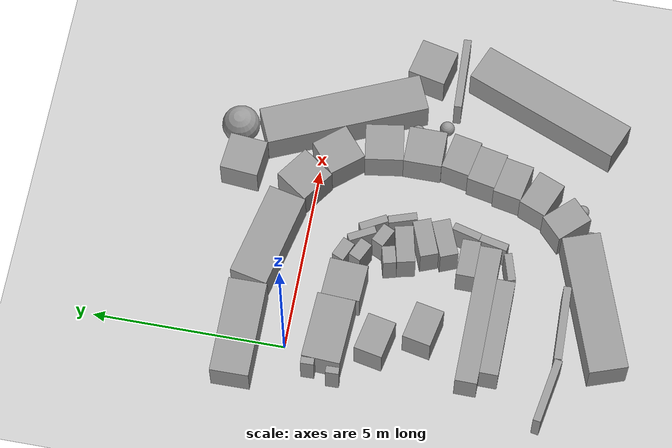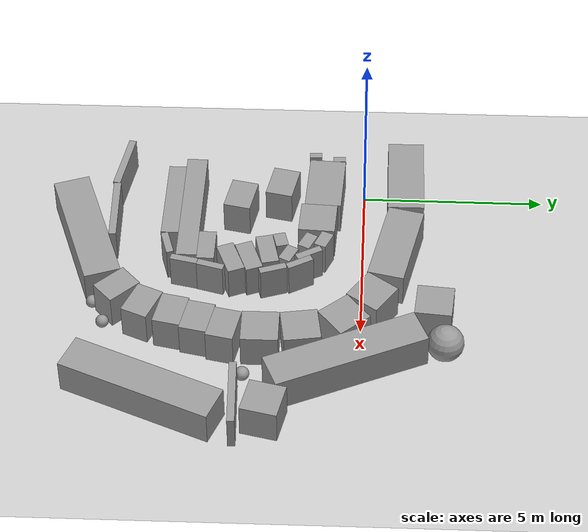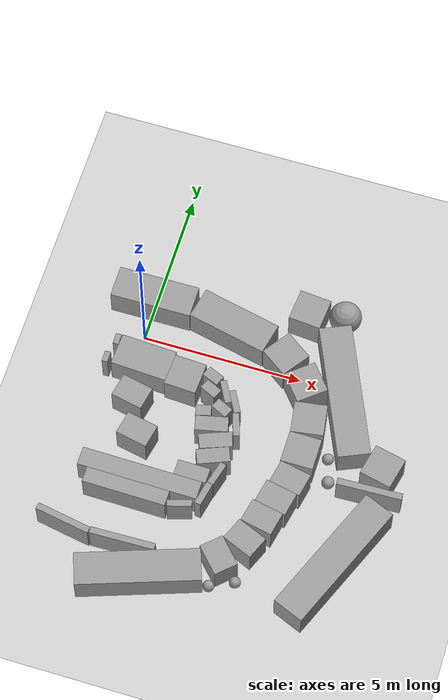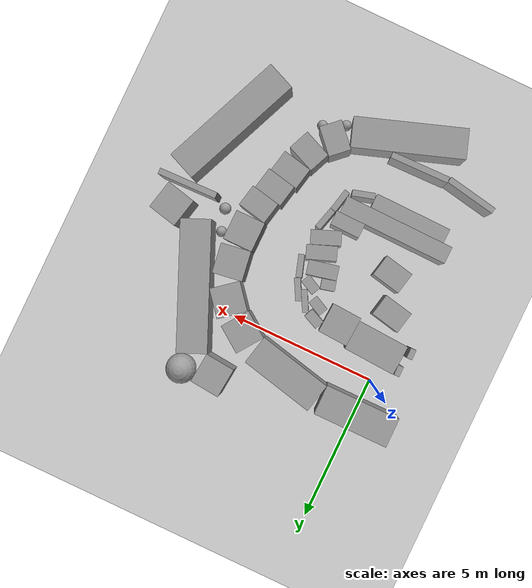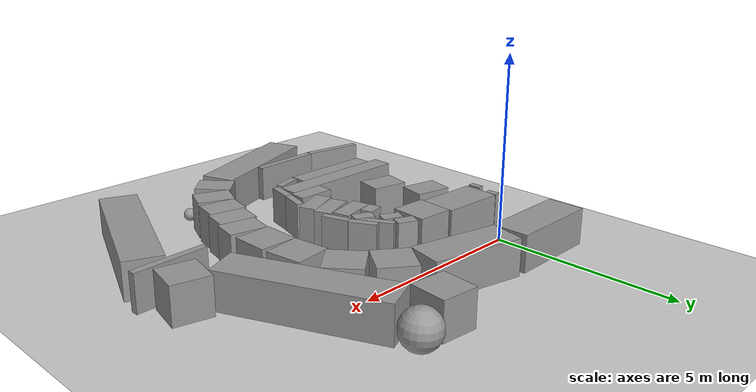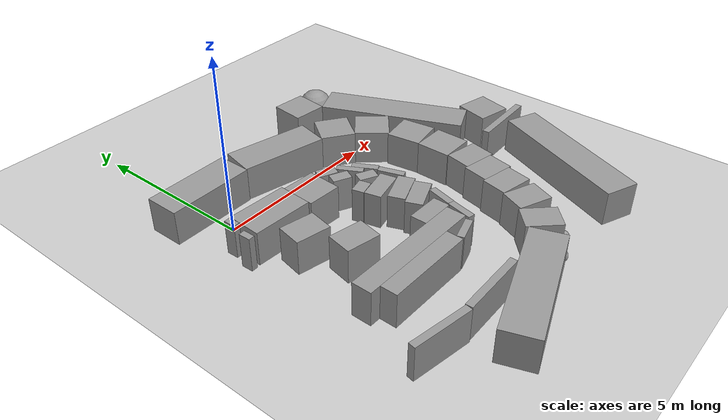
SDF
<sdf version="1.7">
 <world name="default">
  <model name="ground_plane">
   <static>1</static>
   <link name="link">
    <collision name="collision">
     <geometry><plane><normal>0 0 1</normal><size>100 100</size></plane></geometry>
     <surface><friction><ode><mu>100</mu><mu2>50</mu2></ode></friction></surface>
    </collision>
    <visual name="visual">
     <cast_shadows>0</cast_shadows>
     <geometry><plane><normal>0 0 1</normal><size>100 100</size></plane></geometry>
     <material>
      <script><uri>file://media/materials/scripts/gazebo.material</uri><name>Gazebo/Grey</name></script>
     </material>
    </visual>
   </link>
  </model>
  <model name="unit_box_1">
   <pose>8.22557 -2.44196 0.499997 6e-06 -0 -0.223027</pose>
   <link name="link">
    <inertial>
     <mass>1</mass>
     <inertia>
      <ixx>0.166667</ixx>
      <ixy>0</ixy>
      <ixz>0</ixz>
      <iyy>0.166667</iyy>
      <iyz>0</iyz>
      <izz>0.166667</izz>
     </inertia>
    </inertial>
    <collision name="collision"><geometry><box><size>1 1 1</size></box></geometry></collision>
    <visual name="visual">
     <geometry><box><size>1 1 1</size></box></geometry>
     <material>
      <script><name>Gazebo/Grey</name><uri>file://media/materials/scripts/gazebo.material</uri></script>
     </material>
    </visual>
   </link>
  </model>
  <model name="unit_sphere">
   <pose>6.74909 -3.084 0.194375 -0.17731 0.130776 -0.168277</pose>
   <link name="link">
    <inertial>
     <mass>1</mass>
     <inertia><ixx>0.1</ixx><ixy>0</ixy><ixz>0</ixz><iyy>0.1</iyy><iyz>0</iyz><izz>0.1</izz></inertia>
    </inertial>
    <collision name="collision"><geometry><sphere><radius>0.194375</radius></sphere></geometry></collision>
    <visual name="visual">
     <geometry><sphere><radius>0.194375</radius></sphere></geometry>
     <material>
      <script><name>Gazebo/Grey</name><uri>file://media/materials/scripts/gazebo.material</uri></script>
     </material>
    </visual>
   </link>
  </model>
  <model name="unit_box_2">
   <pose>3.31323 -3.57496 0.499996 0 -7e-06 0.384359</pose>
   <link name="link">
    <inertial>
     <mass>1</mass>
     <inertia>
      <ixx>0.166667</ixx>
      <ixy>0</ixy>
      <ixz>0</ixz>
      <iyy>0.166667</iyy>
      <iyz>0</iyz>
      <izz>0.166667</izz>
     </inertia>
    </inertial>
    <collision name="collision"><geometry><box><size>1 0.478045 1</size></box></geometry></collision>
    <visual name="visual">
     <geometry><box><size>1 0.478045 1</size></box></geometry>
     <material>
      <script><name>Gazebo/Grey</name><uri>file://media/materials/scripts/gazebo.material</uri></script>
     </material>
    </visual>
   </link>
  </model>
  <model name="unit_sphere_clone">
   <pose>5.02156 -6.94458 0.176854 0.274316 -0.071619 -0.111682</pose>
   <link name="link">
    <inertial>
     <mass>1</mass>
     <inertia><ixx>0.1</ixx><ixy>0</ixy><ixz>0</ixz><iyy>0.1</iyy><iyz>0</iyz><izz>0.1</izz></inertia>
    </inertial>
    <collision name="collision"><geometry><sphere><radius>0.176854</radius></sphere></geometry></collision>
    <visual name="visual">
     <geometry><sphere><radius>0.176854</radius></sphere></geometry>
     <material>
      <script><name>Gazebo/Grey</name><uri>file://media/materials/scripts/gazebo.material</uri></script>
     </material>
    </visual>
   </link>
  </model>
  <model name="unit_box_0_clone_clone">
   <pose>1.39984 -4.76033 0.5 1e-06 -0 -0.013861</pose>
   <link name="link">
    <inertial>
     <mass>1</mass>
     <inertia>
      <ixx>0.166667</ixx>
      <ixy>0</ixy>
      <ixz>0</ixz>
      <iyy>0.166667</iyy>
      <iyz>0</iyz>
      <izz>0.166667</izz>
     </inertia>
    </inertial>
    <collision name="collision"><geometry><box><size>3.71633 0.569799 1</size></box></geometry></collision>
    <visual name="visual">
     <geometry><box><size>3.71633 0.569799 1</size></box></geometry>
     <material>
      <script><name>Gazebo/Grey</name><uri>file://media/materials/scripts/gazebo.material</uri></script>
     </material>
    </visual>
   </link>
  </model>
  <model name="unit_box_4">
   <pose>6.46169 -0.369737 0.499997 0 7e-06 0.411068</pose>
   <link name="link">
    <inertial>
     <mass>1</mass>
     <inertia>
      <ixx>0.166667</ixx>
      <ixy>0</ixy>
      <ixz>0</ixz>
      <iyy>0.166667</iyy>
      <iyz>0</iyz>
      <izz>0.166667</izz>
     </inertia>
    </inertial>
    <collision name="collision"><geometry><box><size>1 4.30572 1</size></box></geometry></collision>
    <visual name="visual">
     <geometry><box><size>1 4.30572 1</size></box></geometry>
     <material>
      <script><name>Gazebo/Grey</name><uri>file://media/materials/scripts/gazebo.material</uri></script>
     </material>
    </visual>
   </link>
  </model>
  <model name="unit_box_1_clone">
   <pose>4.70442 1.95361 0.5 0 0 -0.091494</pose>
   <link name="link">
    <inertial>
     <mass>1</mass>
     <inertia>
      <ixx>0.166667</ixx>
      <ixy>0</ixy>
      <ixz>0</ixz>
      <iyy>0.166667</iyy>
      <iyz>0</iyz>
      <izz>0.166667</izz>
     </inertia>
    </inertial>
    <collision name="collision"><geometry><box><size>1 1 1</size></box></geometry></collision>
    <visual name="visual">
     <geometry><box><size>1 1 1</size></box></geometry>
     <material>
      <script><name>Gazebo/Grey</name><uri>file://media/materials/scripts/gazebo.material</uri></script>
     </material>
    </visual>
   </link>
  </model>
  <model name="unit_sphere_clone_0">
   <pose>4.31144 -7.27911 0.176854 -0.01743 -0.030415 -0.038102</pose>
   <link name="link">
    <inertial>
     <mass>1</mass>
     <inertia><ixx>0.1</ixx><ixy>0</ixy><ixz>0</ixz><iyy>0.1</iyy><iyz>0</iyz><izz>0.1</izz></inertia>
    </inertial>
    <collision name="collision"><geometry><sphere><radius>0.176854</radius></sphere></geometry></collision>
    <visual name="visual">
     <geometry><sphere><radius>0.176854</radius></sphere></geometry>
     <material>
      <script><name>Gazebo/Grey</name><uri>file://media/materials/scripts/gazebo.material</uri></script>
     </material>
    </visual>
   </link>
  </model>
  <model name="unit_box_4_clone">
   <pose>7.64081 -5.64329 0.5 0 -1e-06 -0.394064</pose>
   <link name="link">
    <inertial>
     <mass>1</mass>
     <inertia>
      <ixx>0.166667</ixx>
      <ixy>0</ixy>
      <ixz>0</ixz>
      <iyy>0.166667</iyy>
      <iyz>0</iyz>
      <izz>0.166667</izz>
     </inertia>
    </inertial>
    <collision name="collision"><geometry><box><size>1 4.30572 1</size></box></geometry></collision>
    <visual name="visual">
     <geometry><box><size>1 4.30572 1</size></box></geometry>
     <material>
      <script><name>Gazebo/Grey</name><uri>file://media/materials/scripts/gazebo.material</uri></script>
     </material>
    </visual>
   </link>
  </model>
  <model name="unit_sphere_clone_0_clone">
   <pose>6.53597 -2.34604 0.176854 -0.281157 0.137155 -0.014085</pose>
   <link name="link">
    <inertial>
     <mass>1</mass>
     <inertia><ixx>0.1</ixx><ixy>0</ixy><ixz>0</ixz><iyy>0.1</iyy><iyz>0</iyz><izz>0.1</izz></inertia>
    </inertial>
    <collision name="collision"><geometry><sphere><radius>0.176854</radius></sphere></geometry></collision>
    <visual name="visual">
     <geometry><sphere><radius>0.176854</radius></sphere></geometry>
     <material>
      <script><name>Gazebo/Grey</name><uri>file://media/materials/scripts/gazebo.material</uri></script>
     </material>
    </visual>
   </link>
  </model>
  <model name="unit_sphere_0">
   <pose>5.76439 2.25601 0.5 -0.036818 -0.015547 -0.07567</pose>
   <link name="link">
    <inertial>
     <mass>1</mass>
     <inertia><ixx>0.1</ixx><ixy>0</ixy><ixz>0</ixz><iyy>0.1</iyy><iyz>0</iyz><izz>0.1</izz></inertia>
    </inertial>
    <collision name="collision"><geometry><sphere><radius>0.5</radius></sphere></geometry></collision>
    <visual name="visual">
     <geometry><sphere><radius>0.5</radius></sphere></geometry>
     <material>
      <script><name>Gazebo/Grey</name><uri>file://media/materials/scripts/gazebo.material</uri></script>
     </material>
    </visual>
   </link>
  </model>
  <model name="unit_box">
   <pose>0.352848 -1.09341 0.5 0 -0 -0.054375</pose>
   <link name="link">
    <inertial>
     <mass>1</mass>
     <inertia>
      <ixx>0.166667</ixx>
      <ixy>0</ixy>
      <ixz>0</ixz>
      <iyy>0.166667</iyy>
      <iyz>0</iyz>
      <izz>0.166667</izz>
     </inertia>
    </inertial>
    <collision name="collision"><geometry><box><size>1.75066 1 1</size></box></geometry></collision>
    <visual name="visual">
     <geometry><box><size>1.75066 1 1</size></box></geometry>
     <material>
      <script><name>Gazebo/Grey</name><uri>file://media/materials/scripts/gazebo.material</uri></script>
     </material>
    </visual>
   </link>
  </model>
  <model name="unit_box_clone">
   <pose>-0.016684 1.15521 0.499996 5e-06 1e-06 0.004419</pose>
   <link name="link">
    <inertial>
     <mass>1</mass>
     <inertia>
      <ixx>0.166667</ixx>
      <ixy>0</ixy>
      <ixz>0</ixz>
      <iyy>0.166667</iyy>
      <iyz>0</iyz>
      <izz>0.166667</izz>
     </inertia>
    </inertial>
    <collision name="collision"><geometry><box><size>2.53382 1 1</size></box></geometry></collision>
    <visual name="visual">
     <geometry><box><size>2.53382 1 1</size></box></geometry>
     <material>
      <script><name>Gazebo/Grey</name><uri>file://media/materials/scripts/gazebo.material</uri></script>
     </material>
    </visual>
   </link>
  </model>
  <model name="unit_box_clone_0">
   <pose>2.59778 0.903526 0.5 -0 -0 -0.219623</pose>
   <link name="link">
    <inertial>
     <mass>1</mass>
     <inertia>
      <ixx>0.166667</ixx>
      <ixy>0</ixy>
      <ixz>0</ixz>
      <iyy>0.166667</iyy>
      <iyz>0</iyz>
      <izz>0.166667</izz>
     </inertia>
    </inertial>
    <collision name="collision"><geometry><box><size>2.53382 1 1</size></box></geometry></collision>
    <visual name="visual">
     <geometry><box><size>2.53382 1 1</size></box></geometry>
     <material>
      <script><name>Gazebo/Grey</name><uri>file://media/materials/scripts/gazebo.material</uri></script>
     </material>
    </visual>
   </link>
  </model>
  <model name="unit_box_5_clone">
   <pose>1.72147 -1.25745 0.499991 0 -0 -0.054277</pose>
   <link name="link">
    <inertial>
     <mass>1</mass>
     <inertia>
      <ixx>0.166667</ixx>
      <ixy>0</ixy>
      <ixz>0</ixz>
      <iyy>0.166667</iyy>
      <iyz>0</iyz>
      <izz>0.166667</izz>
     </inertia>
    </inertial>
    <collision name="collision"><geometry><box><size>1 1 1</size></box></geometry></collision>
    <visual name="visual">
     <geometry><box><size>1 1 1</size></box></geometry>
     <material>
      <script><name>Gazebo/Grey</name><uri>file://media/materials/scripts/gazebo.material</uri></script>
     </material>
    </visual>
   </link>
  </model>
  <model name="unit_box_5_clone_1">
   <pose>4.43 0.29061 0.5 0 -0 -0.618072</pose>
   <link name="link">
    <inertial>
     <mass>1</mass>
     <inertia>
      <ixx>0.166667</ixx>
      <ixy>0</ixy>
      <ixz>0</ixz>
      <iyy>0.166667</iyy>
      <iyz>0</iyz>
      <izz>0.166667</izz>
     </inertia>
    </inertial>
    <collision name="collision"><geometry><box><size>1 1 1</size></box></geometry></collision>
    <visual name="visual">
     <geometry><box><size>1 1 1</size></box></geometry>
     <material>
      <script><name>Gazebo/Grey</name><uri>file://media/materials/scripts/gazebo.material</uri></script>
     </material>
    </visual>
   </link>
  </model>
  <model name="unit_box_5_clone_1_clone">
   <pose>5.27375 -0.443744 0.5 0 -0 -0.88217</pose>
   <link name="link">
    <inertial>
     <mass>1</mass>
     <inertia>
      <ixx>0.166667</ixx>
      <ixy>0</ixy>
      <ixz>0</ixz>
      <iyy>0.166667</iyy>
      <iyz>0</iyz>
      <izz>0.166667</izz>
     </inertia>
    </inertial>
    <collision name="collision"><geometry><box><size>1 1 1</size></box></geometry></collision>
    <visual name="visual">
     <geometry><box><size>1 1 1</size></box></geometry>
     <material>
      <script><name>Gazebo/Grey</name><uri>file://media/materials/scripts/gazebo.material</uri></script>
     </material>
    </visual>
   </link>
  </model>
  <model name="unit_box_5_clone_1_clone_clone_0">
   <pose>5.69873 -1.57989 0.499995 9e-06 -0 -1.42366</pose>
   <link name="link">
    <inertial>
     <mass>1</mass>
     <inertia>
      <ixx>0.166667</ixx>
      <ixy>0</ixy>
      <ixz>0</ixz>
      <iyy>0.166667</iyy>
      <iyz>0</iyz>
      <izz>0.166667</izz>
     </inertia>
    </inertial>
    <collision name="collision"><geometry><box><size>1 1 1</size></box></geometry></collision>
    <visual name="visual">
     <geometry><box><size>1 1 1</size></box></geometry>
     <material>
      <script><name>Gazebo/Grey</name><uri>file://media/materials/scripts/gazebo.material</uri></script>
     </material>
    </visual>
   </link>
  </model>
  <model name="unit_box_5_clone_0_clone">
   <pose>5.7657 -2.64944 0.5 -0 -0 -0.003359</pose>
   <link name="link">
    <inertial>
     <mass>1</mass>
     <inertia>
      <ixx>0.166667</ixx>
      <ixy>0</ixy>
      <ixz>0</ixz>
      <iyy>0.166667</iyy>
      <iyz>0</iyz>
      <izz>0.166667</izz>
     </inertia>
    </inertial>
    <collision name="collision"><geometry><box><size>1 1 1</size></box></geometry></collision>
    <visual name="visual">
     <geometry><box><size>1 1 1</size></box></geometry>
     <material>
      <script><name>Gazebo/Grey</name><uri>file://media/materials/scripts/gazebo.material</uri></script>
     </material>
    </visual>
   </link>
  </model>
  <model name="unit_box_5_clone_0_clone_0">
   <pose>5.70824 -3.61361 0.5 0 0 -0.201681</pose>
   <link name="link">
    <inertial>
     <mass>1</mass>
     <inertia>
      <ixx>0.166667</ixx>
      <ixy>0</ixy>
      <ixz>0</ixz>
      <iyy>0.166667</iyy>
      <iyz>0</iyz>
      <izz>0.166667</izz>
     </inertia>
    </inertial>
    <collision name="collision"><geometry><box><size>1 0.74632 1</size></box></geometry></collision>
    <visual name="visual">
     <geometry><box><size>1 0.74632 1</size></box></geometry>
     <material>
      <script><name>Gazebo/Grey</name><uri>file://media/materials/scripts/gazebo.material</uri></script>
     </material>
    </visual>
   </link>
  </model>
  <model name="unit_box_5_clone_0_clone_0_clone">
   <pose>5.48067 -4.32884 0.499998 -6e-06 -0 -0.201695</pose>
   <link name="link">
    <inertial>
     <mass>1</mass>
     <inertia>
      <ixx>0.166667</ixx>
      <ixy>0</ixy>
      <ixz>0</ixz>
      <iyy>0.166667</iyy>
      <iyz>0</iyz>
      <izz>0.166667</izz>
     </inertia>
    </inertial>
    <collision name="collision"><geometry><box><size>1 0.746321 1</size></box></geometry></collision>
    <visual name="visual">
     <geometry><box><size>1 0.746321 1</size></box></geometry>
     <material>
      <script><name>Gazebo/Grey</name><uri>file://media/materials/scripts/gazebo.material</uri></script>
     </material>
    </visual>
   </link>
  </model>
  <model name="unit_box_5_clone_0_clone_0_clone_clone">
   <pose>5.26137 -5.04577 0.499996 0 7e-06 -0.201699</pose>
   <link name="link">
    <inertial>
     <mass>1</mass>
     <inertia>
      <ixx>0.166667</ixx>
      <ixy>0</ixy>
      <ixz>0</ixz>
      <iyy>0.166667</iyy>
      <iyz>0</iyz>
      <izz>0.166667</izz>
     </inertia>
    </inertial>
    <collision name="collision"><geometry><box><size>1 0.746321 1</size></box></geometry></collision>
    <visual name="visual">
     <geometry><box><size>1 0.746321 1</size></box></geometry>
     <material>
      <script><name>Gazebo/Grey</name><uri>file://media/materials/scripts/gazebo.material</uri></script>
     </material>
    </visual>
   </link>
  </model>
  <model name="unit_box_5_clone_0_clone_0_clone_clone_0">
   <pose>4.98007 -5.83479 0.499999 3e-06 0 -0.397358</pose>
   <link name="link">
    <inertial>
     <mass>1</mass>
     <inertia>
      <ixx>0.166667</ixx>
      <ixy>0</ixy>
      <ixz>0</ixz>
      <iyy>0.166667</iyy>
      <iyz>0</iyz>
      <izz>0.166667</izz>
     </inertia>
    </inertial>
    <collision name="collision"><geometry><box><size>1 0.746321 1</size></box></geometry></collision>
    <visual name="visual">
     <geometry><box><size>1 0.746321 1</size></box></geometry>
     <material>
      <script><name>Gazebo/Grey</name><uri>file://media/materials/scripts/gazebo.material</uri></script>
     </material>
    </visual>
   </link>
  </model>
  <model name="unit_box_5_clone_0_clone_0_clone_clone_0_clone">
   <pose>4.40746 -6.56617 0.5 0 0 -0.817882</pose>
   <link name="link">
    <inertial>
     <mass>1</mass>
     <inertia>
      <ixx>0.166667</ixx>
      <ixy>0</ixy>
      <ixz>0</ixz>
      <iyy>0.166667</iyy>
      <iyz>0</iyz>
      <izz>0.166667</izz>
     </inertia>
    </inertial>
    <collision name="collision"><geometry><box><size>1 0.746321 1</size></box></geometry></collision>
    <visual name="visual">
     <geometry><box><size>1 0.746321 1</size></box></geometry>
     <material>
      <script><name>Gazebo/Grey</name><uri>file://media/materials/scripts/gazebo.material</uri></script>
     </material>
    </visual>
   </link>
  </model>
  <model name="unit_box_0_clone_clone_clone">
   <pose>2.25671 -7.60051 0.499983 -0 9e-06 0.335746</pose>
   <link name="link">
    <inertial>
     <mass>1</mass>
     <inertia>
      <ixx>0.166667</ixx>
      <ixy>0</ixy>
      <ixz>0</ixz>
      <iyy>0.166667</iyy>
      <iyz>0</iyz>
      <izz>0.166667</izz>
     </inertia>
    </inertial>
    <collision name="collision"><geometry><box><size>3.71633 1 1</size></box></geometry></collision>
    <visual name="visual">
     <geometry><box><size>3.71633 1 1</size></box></geometry>
     <material>
      <script><name>Gazebo/Grey</name><uri>file://media/materials/scripts/gazebo.material</uri></script>
     </material>
    </visual>
   </link>
  </model>
  <model name="unit_box_2_clone_0">
   <pose>2.86848 -4.25671 0.499999 -3e-06 -4e-06 -0.013865</pose>
   <link name="link">
    <inertial>
     <mass>1</mass>
     <inertia>
      <ixx>0.166667</ixx>
      <ixy>0</ixy>
      <ixz>0</ixz>
      <iyy>0.166667</iyy>
      <iyz>0</iyz>
      <izz>0.166667</izz>
     </inertia>
    </inertial>
    <collision name="collision"><geometry><box><size>1 0.478045 1</size></box></geometry></collision>
    <visual name="visual">
     <geometry><box><size>1 0.478045 1</size></box></geometry>
     <material>
      <script><name>Gazebo/Grey</name><uri>file://media/materials/scripts/gazebo.material</uri></script>
     </material>
    </visual>
   </link>
  </model>
  <model name="unit_box_5_clone_0_clone_0_clone_clone_1">
   <pose>0.888004 -3.42724 0.499997 -6e-06 -2e-06 -0.201666</pose>
   <link name="link">
    <inertial>
     <mass>1</mass>
     <inertia>
      <ixx>0.166667</ixx>
      <ixy>0</ixy>
      <ixz>0</ixz>
      <iyy>0.166667</iyy>
      <iyz>0</iyz>
      <izz>0.166667</izz>
     </inertia>
    </inertial>
    <collision name="collision"><geometry><box><size>1 0.746321 1</size></box></geometry></collision>
    <visual name="visual">
     <geometry><box><size>1 0.746321 1</size></box></geometry>
     <material>
      <script><name>Gazebo/Grey</name><uri>file://media/materials/scripts/gazebo.material</uri></script>
     </material>
    </visual>
   </link>
  </model>
  <model name="unit_box_5_clone_0_clone_0_clone_clone_1_clone">
   <pose>3.5936 -4.10581 0.499988 -6e-06 -0 -0.262363</pose>
   <link name="link">
    <inertial>
     <mass>1</mass>
     <inertia>
      <ixx>0.166667</ixx>
      <ixy>0</ixy>
      <ixz>0</ixz>
      <iyy>0.166667</iyy>
      <iyz>0</iyz>
      <izz>0.166667</izz>
     </inertia>
    </inertial>
    <collision name="collision"><geometry><box><size>0.20058 0.746321 1</size></box></geometry></collision>
    <visual name="visual">
     <geometry><box><size>0.20058 0.746321 1</size></box></geometry>
     <material>
      <script><name>Gazebo/Grey</name><uri>file://media/materials/scripts/gazebo.material</uri></script>
     </material>
    </visual>
   </link>
  </model>
  <model name="unit_box_5_clone_0_clone_0_clone_clone_1_clone_clone">
   <pose>3.40808 -4.83337 0.5 0 0 -0.213517</pose>
   <link name="link">
    <inertial>
     <mass>1</mass>
     <inertia>
      <ixx>0.166667</ixx>
      <ixy>0</ixy>
      <ixz>0</ixz>
      <iyy>0.166667</iyy>
      <iyz>0</iyz>
      <izz>0.166667</izz>
     </inertia>
    </inertial>
    <collision name="collision"><geometry><box><size>0.20058 0.746321 1</size></box></geometry></collision>
    <visual name="visual">
     <geometry><box><size>0.20058 0.746321 1</size></box></geometry>
     <material>
      <script><name>Gazebo/Grey</name><uri>file://media/materials/scripts/gazebo.material</uri></script>
     </material>
    </visual>
   </link>
  </model>
  <model name="unit_box_5_clone_0_clone_0_clone_clone_1_clone_clone_clone">
   <pose>2.81533 -5.33514 0.500001 2e-06 -0 -1.28379</pose>
   <link name="link">
    <inertial>
     <mass>1</mass>
     <inertia>
      <ixx>0.166667</ixx>
      <ixy>0</ixy>
      <ixz>0</ixz>
      <iyy>0.166667</iyy>
      <iyz>0</iyz>
      <izz>0.166667</izz>
     </inertia>
    </inertial>
    <collision name="collision"><geometry><box><size>0.20058 0.746321 1</size></box></geometry></collision>
    <visual name="visual">
     <geometry><box><size>0.20058 0.746321 1</size></box></geometry>
     <material>
      <script><name>Gazebo/Grey</name><uri>file://media/materials/scripts/gazebo.material</uri></script>
     </material>
    </visual>
   </link>
  </model>
  <model name="unit_box_0_clone">
   <pose>1.14189 -5.28289 0.499991 -1e-06 -0 -0.01385</pose>
   <link name="link">
    <inertial>
     <mass>1</mass>
     <inertia>
      <ixx>0.166667</ixx>
      <ixy>0</ixy>
      <ixz>0</ixz>
      <iyy>0.166667</iyy>
      <iyz>0</iyz>
      <izz>0.166667</izz>
     </inertia>
    </inertial>
    <collision name="collision"><geometry><box><size>2.57572 0.482343 1</size></box></geometry></collision>
    <visual name="visual">
     <geometry><box><size>2.57572 0.482343 1</size></box></geometry>
     <material>
      <script><name>Gazebo/Grey</name><uri>file://media/materials/scripts/gazebo.material</uri></script>
     </material>
    </visual>
   </link>
  </model>
  <model name="unit_box_5_clone_0_clone_0_clone_clone_1_clone_clone_clone_clone_clone_clone">
   <pose>1.55724 -6.88875 0.499987 1.4e-05 1e-06 -1.54906</pose>
   <link name="link">
    <inertial>
     <mass>1</mass>
     <inertia>
      <ixx>0.166667</ixx>
      <ixy>0</ixy>
      <ixz>0</ixz>
      <iyy>0.166667</iyy>
      <iyz>0</iyz>
      <izz>0.166667</izz>
     </inertia>
    </inertial>
    <collision name="collision"><geometry><box><size>0.20058 1.98568 1</size></box></geometry></collision>
    <visual name="visual">
     <geometry><box><size>0.20058 1.98568 1</size></box></geometry>
     <material>
      <script><name>Gazebo/Grey</name><uri>file://media/materials/scripts/gazebo.material</uri></script>
     </material>
    </visual>
   </link>
  </model>
  <model name="unit_box_5_clone_0_clone_0_clone_clone_1_clone_1">
   <pose>0.366455 -2.28046 0.5 0 0 -0.201757</pose>
   <link name="link">
    <inertial>
     <mass>1</mass>
     <inertia>
      <ixx>0.166667</ixx>
      <ixy>0</ixy>
      <ixz>0</ixz>
      <iyy>0.166667</iyy>
      <iyz>0</iyz>
      <izz>0.166667</izz>
     </inertia>
    </inertial>
    <collision name="collision"><geometry><box><size>1 0.746321 1</size></box></geometry></collision>
    <visual name="visual">
     <geometry><box><size>1 0.746321 1</size></box></geometry>
     <material>
      <script><name>Gazebo/Grey</name><uri>file://media/materials/scripts/gazebo.material</uri></script>
     </material>
    </visual>
   </link>
  </model>
  <model name="unit_box_5_clone_0_clone_0_clone_clone_1_clone_0_clone_0">
   <pose>2.59916 -2.24439 0.500001 3e-06 -0 -1.31999</pose>
   <link name="link">
    <inertial>
     <mass>1</mass>
     <inertia>
      <ixx>0.166667</ixx>
      <ixy>0</ixy>
      <ixz>0</ixz>
      <iyy>0.166667</iyy>
      <iyz>0</iyz>
      <izz>0.166667</izz>
     </inertia>
    </inertial>
    <collision name="collision"><geometry><box><size>0.341979 0.472835 1</size></box></geometry></collision>
    <visual name="visual">
     <geometry><box><size>0.341979 0.472835 1</size></box></geometry>
     <material>
      <script><name>Gazebo/Grey</name><uri>file://media/materials/scripts/gazebo.material</uri></script>
     </material>
    </visual>
   </link>
  </model>
  <model name="unit_box_5_clone_0_clone_0_clone_clone_1_clone_0_clone_clone">
   <pose>-0.608918 -0.730316 0.499999 2e-06 -3e-06 -1.54789</pose>
   <link name="link">
    <inertial>
     <mass>1</mass>
     <inertia>
      <ixx>0.166667</ixx>
      <ixy>0</ixy>
      <ixz>0</ixz>
      <iyy>0.166667</iyy>
      <iyz>0</iyz>
      <izz>0.166667</izz>
     </inertia>
    </inertial>
    <collision name="collision"><geometry><box><size>0.341979 0.183226 1</size></box></geometry></collision>
    <visual name="visual">
     <geometry><box><size>0.341979 0.183226 1</size></box></geometry>
     <material>
      <script><name>Gazebo/Grey</name><uri>file://media/materials/scripts/gazebo.material</uri></script>
     </material>
    </visual>
   </link>
  </model>
  <model name="unit_box_2_clone_1">
   <pose>3.23426 -3.08235 0.5 0 -0 0.36613</pose>
   <link name="link">
    <inertial>
     <mass>1</mass>
     <inertia>
      <ixx>0.166667</ixx>
      <ixy>0</ixy>
      <ixz>0</ixz>
      <iyy>0.166667</iyy>
      <iyz>0</iyz>
      <izz>0.166667</izz>
     </inertia>
    </inertial>
    <collision name="collision"><geometry><box><size>1 0.478045 1</size></box></geometry></collision>
    <visual name="visual">
     <geometry><box><size>1 0.478045 1</size></box></geometry>
     <material>
      <script><name>Gazebo/Grey</name><uri>file://media/materials/scripts/gazebo.material</uri></script>
     </material>
    </visual>
   </link>
  </model>
  <model name="unit_box_2_clone_2">
   <pose>2.96455 -2.59604 0.5 0 -0 0.223575</pose>
   <link name="link">
    <inertial>
     <mass>1</mass>
     <inertia>
      <ixx>0.166667</ixx>
      <ixy>0</ixy>
      <ixz>0</ixz>
      <iyy>0.166667</iyy>
      <iyz>0</iyz>
      <izz>0.166667</izz>
     </inertia>
    </inertial>
    <collision name="collision"><geometry><box><size>1 0.478045 1</size></box></geometry></collision>
    <visual name="visual">
     <geometry><box><size>1 0.478045 1</size></box></geometry>
     <material>
      <script><name>Gazebo/Grey</name><uri>file://media/materials/scripts/gazebo.material</uri></script>
     </material>
    </visual>
   </link>
  </model>
  <model name="unit_box_2_clone_2_clone">
   <pose>2.54587 -1.06892 0.49998 -0 -0 -0.412144</pose>
   <link name="link">
    <inertial>
     <mass>1</mass>
     <inertia>
      <ixx>0.166667</ixx>
      <ixy>0</ixy>
      <ixz>0</ixz>
      <iyy>0.166667</iyy>
      <iyz>0</iyz>
      <izz>0.166667</izz>
     </inertia>
    </inertial>
    <collision name="collision"><geometry><box><size>0.541178 0.339779 1</size></box></geometry></collision>
    <visual name="visual">
     <geometry><box><size>0.541178 0.339779 1</size></box></geometry>
     <material>
      <script><name>Gazebo/Grey</name><uri>file://media/materials/scripts/gazebo.material</uri></script>
     </material>
    </visual>
   </link>
  </model>
  <model name="unit_box_2_clone_2_clone_clone">
   <pose>2.61013 -1.50219 0.5 -0 -0 -0.451259</pose>
   <link name="link">
    <inertial>
     <mass>1</mass>
     <inertia>
      <ixx>0.166667</ixx>
      <ixy>0</ixy>
      <ixz>0</ixz>
      <iyy>0.166667</iyy>
      <iyz>0</iyz>
      <izz>0.166667</izz>
     </inertia>
    </inertial>
    <collision name="collision"><geometry><box><size>0.541178 0.339779 1</size></box></geometry></collision>
    <visual name="visual">
     <geometry><box><size>0.541178 0.339779 1</size></box></geometry>
     <material>
      <script><name>Gazebo/Grey</name><uri>file://media/materials/scripts/gazebo.material</uri></script>
     </material>
    </visual>
   </link>
  </model>
  <model name="unit_box_2_clone_2_clone_clone_0">
   <pose>3.10898 -2.00804 0.5 0 -0 -0.455868</pose>
   <link name="link">
    <inertial>
     <mass>1</mass>
     <inertia>
      <ixx>0.166667</ixx>
      <ixy>0</ixy>
      <ixz>0</ixz>
      <iyy>0.166667</iyy>
      <iyz>0</iyz>
      <izz>0.166667</izz>
     </inertia>
    </inertial>
    <collision name="collision"><geometry><box><size>0.541178 0.339779 1</size></box></geometry></collision>
    <visual name="visual">
     <geometry><box><size>0.541178 0.339779 1</size></box></geometry>
     <material>
      <script><name>Gazebo/Grey</name><uri>file://media/materials/scripts/gazebo.material</uri></script>
     </material>
    </visual>
   </link>
  </model>
  <model name="unit_box_5_clone_0_clone_0_clone_clone_1_clone_clone_2">
   <pose>3.05779 -1.4609 0.499998 -6e-06 3e-06 0.493351</pose>
   <link name="link">
    <inertial>
     <mass>1</mass>
     <inertia>
      <ixx>0.166667</ixx>
      <ixy>0</ixy>
      <ixz>0</ixz>
      <iyy>0.166667</iyy>
      <iyz>0</iyz>
      <izz>0.166667</izz>
     </inertia>
    </inertial>
    <collision name="collision"><geometry><box><size>0.20058 0.746321 1</size></box></geometry></collision>
    <visual name="visual">
     <geometry><box><size>0.20058 0.746321 1</size></box></geometry>
     <material>
      <script><name>Gazebo/Grey</name><uri>file://media/materials/scripts/gazebo.material</uri></script>
     </material>
    </visual>
   </link>
  </model>
  <model name="unit_box_5_clone_0_clone_0_clone_clone_1_clone_clone_clone_clone_clone_clone_clone_0">
   <pose>-0.304048 -6.78721 0.499999 -2e-06 1e-06 -1.74601</pose>
   <link name="link">
    <inertial>
     <mass>1</mass>
     <inertia>
      <ixx>0.166667</ixx>
      <ixy>0</ixy>
      <ixz>0</ixz>
      <iyy>0.166667</iyy>
      <iyz>0</iyz>
      <izz>0.166667</izz>
     </inertia>
    </inertial>
    <collision name="collision"><geometry><box><size>0.20058 1.72468 1</size></box></geometry></collision>
    <visual name="visual">
     <geometry><box><size>0.20058 1.72468 1</size></box></geometry>
     <material>
      <script><name>Gazebo/Grey</name><uri>file://media/materials/scripts/gazebo.material</uri></script>
     </material>
    </visual>
   </link>
  </model>
  <model name="unit_box_5_clone_0_clone_0_clone_clone_1_clone_clone_clone_clone_clone_clone_clone_1">
   <pose>8.0434 -3.25365 0.499987 1.4e-05 -1e-06 -1.53901</pose>
   <link name="link">
    <inertial>
     <mass>1</mass>
     <inertia>
      <ixx>0.166667</ixx>
      <ixy>0</ixy>
      <ixz>0</ixz>
      <iyy>0.166667</iyy>
      <iyz>0</iyz>
      <izz>0.166667</izz>
     </inertia>
    </inertial>
    <collision name="collision"><geometry><box><size>0.20058 1.98568 1</size></box></geometry></collision>
    <visual name="visual">
     <geometry><box><size>0.20058 1.98568 1</size></box></geometry>
     <material>
      <script><name>Gazebo/Grey</name><uri>file://media/materials/scripts/gazebo.material</uri></script>
     </material>
    </visual>
   </link>
  </model>
  <model name="unit_box_5_clone_0_clone_0_clone_clone_1_clone_clone_2_clone">
   <pose>3.41445 -1.69908 0.499997 8e-06 -2e-06 0.495183</pose>
   <link name="link">
    <inertial>
     <mass>1</mass>
     <inertia>
      <ixx>0.166667</ixx>
      <ixy>0</ixy>
      <ixz>0</ixz>
      <iyy>0.166667</iyy>
      <iyz>0</iyz>
      <izz>0.166667</izz>
     </inertia>
    </inertial>
    <collision name="collision"><geometry><box><size>0.20058 0.746321 1</size></box></geometry></collision>
    <visual name="visual">
     <geometry><box><size>0.20058 0.746321 1</size></box></geometry>
     <material>
      <script><name>Gazebo/Grey</name><uri>file://media/materials/scripts/gazebo.material</uri></script>
     </material>
    </visual>
   </link>
  </model>
  <model name="unit_box_5_clone_0_clone_0_clone_clone_1_clone_clone_2_clone_0">
   <pose>3.67261 -2.41242 0.500001 -2e-06 0 0.316145</pose>
   <link name="link">
    <inertial>
     <mass>1</mass>
     <inertia>
      <ixx>0.166667</ixx>
      <ixy>0</ixy>
      <ixz>0</ixz>
      <iyy>0.166667</iyy>
      <iyz>0</iyz>
      <izz>0.166667</izz>
     </inertia>
    </inertial>
    <collision name="collision"><geometry><box><size>0.20058 0.746321 1</size></box></geometry></collision>
    <visual name="visual">
     <geometry><box><size>0.20058 0.746321 1</size></box></geometry>
     <material>
      <script><name>Gazebo/Grey</name><uri>file://media/materials/scripts/gazebo.material</uri></script>
     </material>
    </visual>
   </link>
  </model>
  <model name="unit_box_5_clone_0_clone_0_clone_clone_1_clone_0_clone_clone_clone_0">
   <pose>-0.742976 -1.39342 0.5 1e-06 -2e-06 -1.55037</pose>
   <link name="link">
    <inertial>
     <mass>1</mass>
     <inertia>
      <ixx>0.166667</ixx>
      <ixy>0</ixy>
      <ixz>0</ixz>
      <iyy>0.166667</iyy>
      <iyz>0</iyz>
      <izz>0.166667</izz>
     </inertia>
    </inertial>
    <collision name="collision"><geometry><box><size>0.341979 0.183226 1</size></box></geometry></collision>
    <visual name="visual">
     <geometry><box><size>0.341979 0.183226 1</size></box></geometry>
     <material>
      <script><name>Gazebo/Grey</name><uri>file://media/materials/scripts/gazebo.material</uri></script>
     </material>
    </visual>
   </link>
  </model>
 </world>
</sdf>
